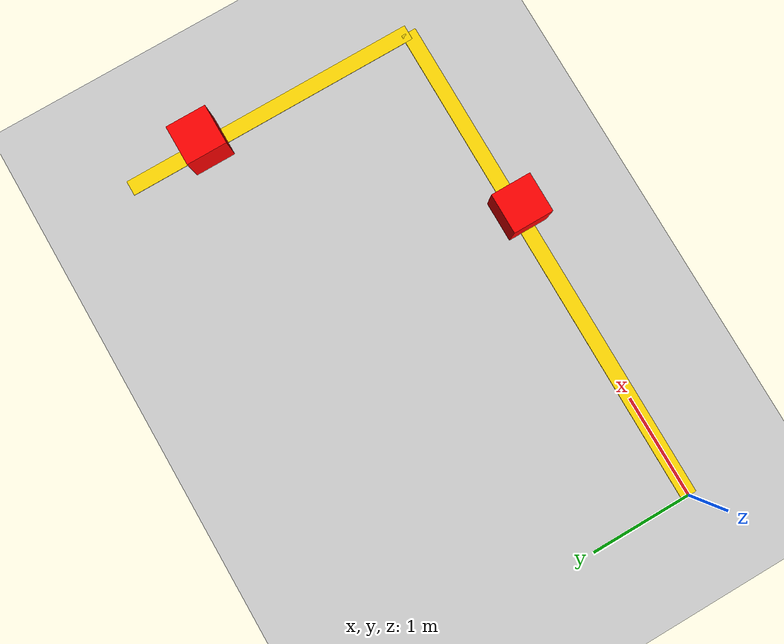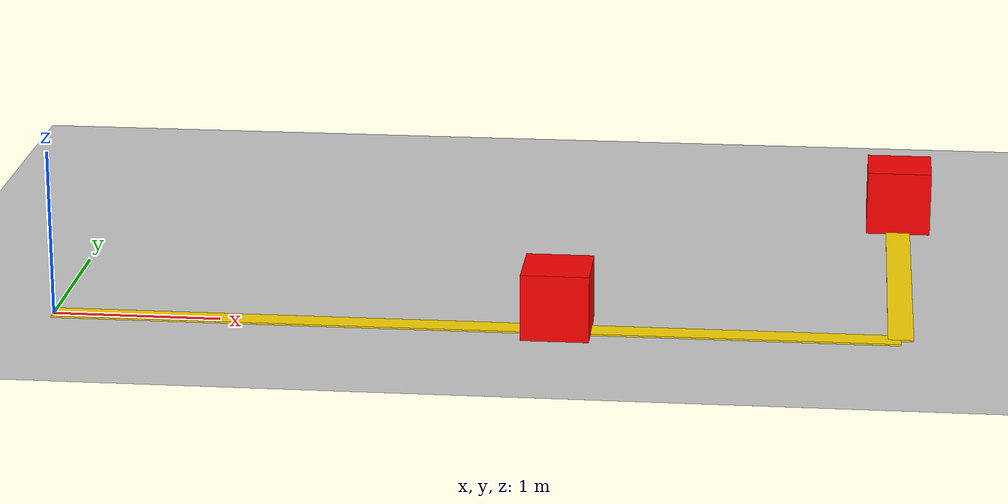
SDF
<?xml version="1.0" ?>
<sdf version="1.6">

<world name="line_world">

  <include>
    <uri>model://ground_plane</uri>
  </include>

  <include>
    <uri>model://sun</uri>
  </include>

  <model name="line_segment_straight">
    <static>true</static>
    <link name="line">
      <visual name="visual">
        <geometry>
          <box>
            <size>5 0.15 0.01</size>
          </box>
        </geometry>
        <material>
          <ambient>1 0.85 0 1</ambient>
          <diffuse>1 0.85 0 1</diffuse>
          <emissive>1 0.85 0 1</emissive>
        </material>
      </visual>
      <pose>2.5 0 0.005 0 0 0</pose>
    </link>
  </model>

  <model name="line_segment_bend">
    <static>true</static>
    <link name="line">
      <visual name="visual">
        <geometry>
          <box>
            <size>0.15 3 0.01</size>
          </box>
        </geometry>
        <material>
          <ambient>1 0.85 0 1</ambient>
          <diffuse>1 0.85 0 1</diffuse>
          <emissive>1 0.85 0 1</emissive>
        </material>
      </visual>
      <pose>5 1.5 0.005 0 0 0</pose>
    </link>
  </model>

  <model name="obstacle_box_1">
    <static>true</static>
    <link name="link">
      <collision name="collision">
        <geometry>
          <box>
            <size>0.4 0.4 0.4</size>
          </box>
        </geometry>
      </collision>
      <visual name="visual">
        <geometry>
          <box>
            <size>0.4 0.4 0.4</size>
          </box>
        </geometry>
        <material>
          <ambient>1 0 0 1</ambient>
          <diffuse>1 0 0 1</diffuse>
        </material>
      </visual>
      <pose>3 0 0.2 0 0 0</pose>
    </link>
  </model>

  <model name="obstacle_box_2">
    <static>true</static>
    <link name="link">
      <collision name="collision">
        <geometry>
          <box>
            <size>0.4 0.4 0.4</size>
          </box>
        </geometry>
      </collision>
      <visual name="visual">
        <geometry>
          <box>
            <size>0.4 0.4 0.4</size>
          </box>
        </geometry>
        <material>
          <ambient>1 0 0 1</ambient>
          <diffuse>1 0 0 1</diffuse>
        </material>
      </visual>
      <pose>5 2.2 0.2 0 0 0</pose>
    </link>
  </model>

</world>

</sdf>
